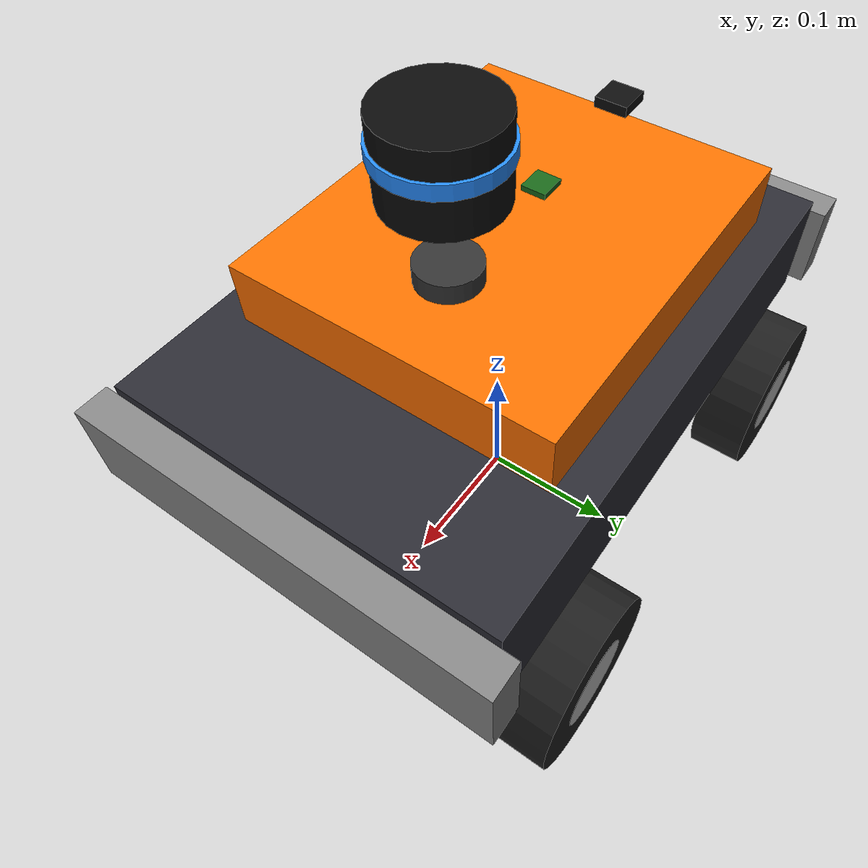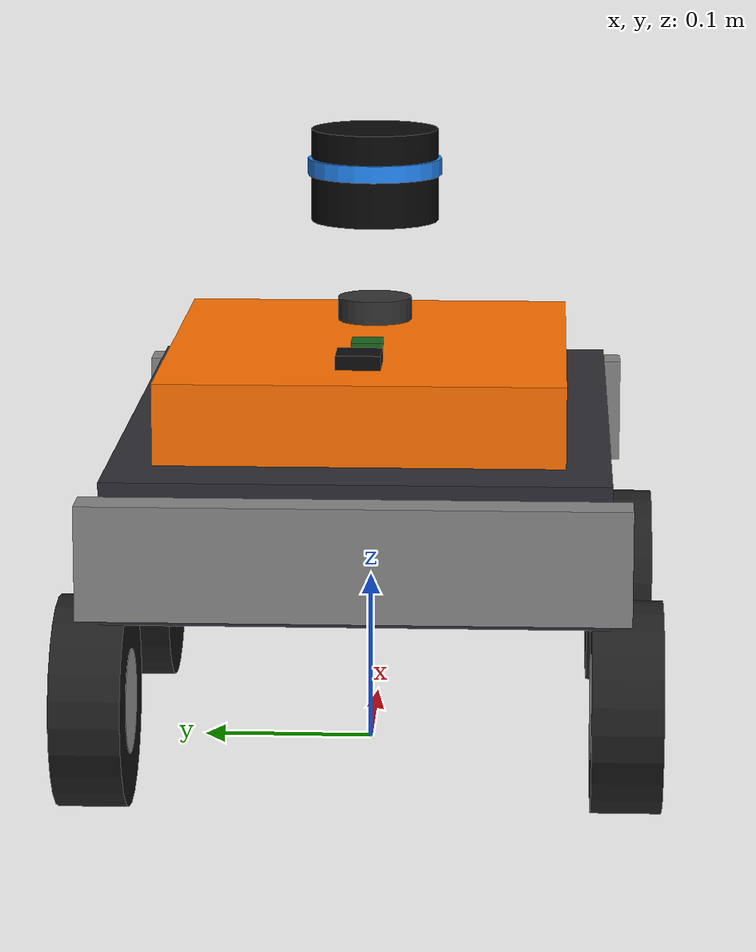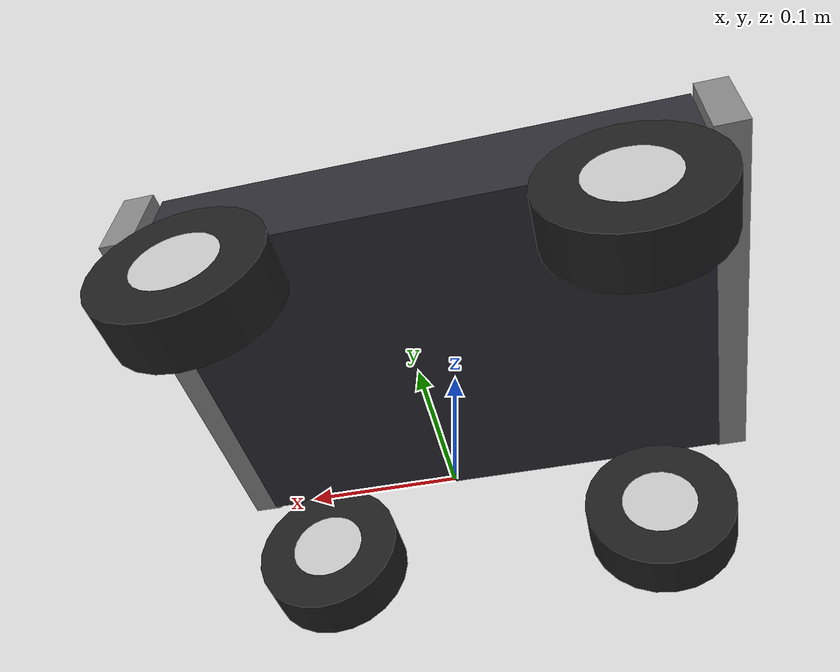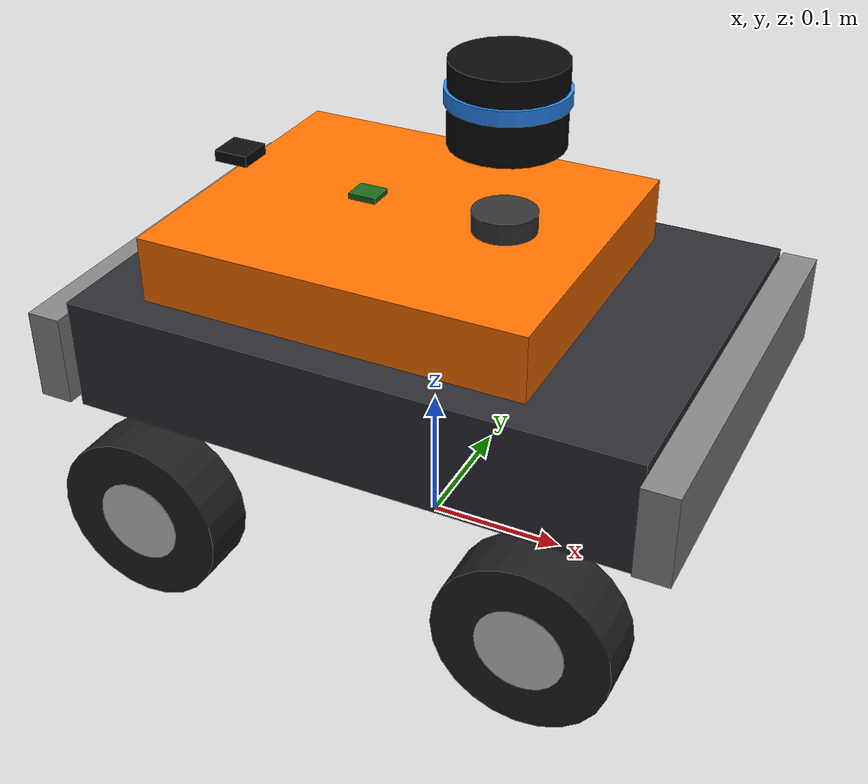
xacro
<?xml version="1.0"?>
<robot xmlns:xacro="http://www.ros.org/wiki/xacro" name="morphonav">

  <xacro:arg name="use_sim"    default="false"/>
  <xacro:arg name="drive_mode" default="rwd"/>
  <xacro:property name="use_sim"    value="$(arg use_sim)"/>
  <xacro:property name="drive_mode" value="$(arg drive_mode)"/>

  <!-- Robot dimensions -->
  <xacro:property name="chassis_l"    value="0.40"/>
  <xacro:property name="chassis_w"    value="0.28"/>
  <xacro:property name="chassis_h"    value="0.08"/>
  <xacro:property name="chassis_mass" value="4.0"/>

  <xacro:property name="wheel_r"    value="0.06"/>
  <xacro:property name="wheel_w"    value="0.04"/>
  <xacro:property name="wheel_mass" value="0.3"/>

  <xacro:property name="wheelbase"   value="0.28"/>
  <xacro:property name="track_width" value="0.30"/>

  <xacro:property name="chassis_z" value="${2*wheel_r + chassis_h/2}"/>

  <!-- Sensor mount macros -->
  <xacro:include filename="$(find morphonav_description)/urdf/imu.xacro"/>
  <xacro:include filename="$(find morphonav_description)/urdf/gps.xacro"/>

  <xacro:macro name="wheel_link" params="name">
    <link name="${name}">
      <visual>
        <geometry><cylinder radius="${wheel_r}" length="${wheel_w}"/></geometry>
        <origin xyz="0 0 0" rpy="${pi/2} 0 0"/>
        <material name="rubber"><color rgba="0.12 0.12 0.12 1.0"/></material>
      </visual>
      <visual>
        <geometry><cylinder radius="${wheel_r*0.50}" length="${wheel_w*0.35}"/></geometry>
        <origin xyz="0 ${wheel_w*0.33} 0" rpy="${pi/2} 0 0"/>
        <material name="hub_silver"><color rgba="0.78 0.78 0.78 1.0"/></material>
      </visual>
      <visual>
        <geometry><cylinder radius="${wheel_r*0.50}" length="${wheel_w*0.35}"/></geometry>
        <origin xyz="0 ${-wheel_w*0.33} 0" rpy="${pi/2} 0 0"/>
        <material name="hub_silver2"><color rgba="0.78 0.78 0.78 1.0"/></material>
      </visual>
      <collision>
        <geometry><cylinder radius="${wheel_r}" length="${wheel_w}"/></geometry>
        <origin xyz="0 0 0" rpy="${pi/2} 0 0"/>
      </collision>
      <inertial>
        <mass value="${wheel_mass}"/>
        <inertia
          ixx="${wheel_mass*(3*wheel_r*wheel_r + wheel_w*wheel_w)/12}"
          iyy="${wheel_mass*wheel_r*wheel_r/2}"
          izz="${wheel_mass*(3*wheel_r*wheel_r + wheel_w*wheel_w)/12}"
          ixy="0" ixz="0" iyz="0"/>
      </inertial>
    </link>
  </xacro:macro>

  <!-- Base frames -->
  <link name="base_footprint"/>

  <joint name="base_joint" type="fixed">
    <parent link="base_footprint"/>
    <child  link="base_link"/>
    <origin xyz="0 0 ${chassis_z}" rpy="0 0 0"/>
  </joint>

  <link name="base_link">
    <visual>
      <geometry><box size="${chassis_l} ${chassis_w} ${chassis_h}"/></geometry>
      <material name="chassis_body"><color rgba="0.17 0.17 0.20 1.0"/></material>
    </visual>
    <visual>
      <geometry><box size="${chassis_l*0.68} ${chassis_w*0.82} 0.046"/></geometry>
      <origin xyz="-0.02 0 ${chassis_h/2 + 0.023}" rpy="0 0 0"/>
      <material name="accent"><color rgba="1.0 0.44 0.0 1.0"/></material>
    </visual>
    <visual>
      <geometry><box size="0.024 ${chassis_w + 0.022} ${chassis_h*0.80}"/></geometry>
      <origin xyz="${chassis_l/2 + 0.012} 0 0" rpy="0 0 0"/>
      <material name="bumper"><color rgba="0.52 0.52 0.52 1.0"/></material>
    </visual>
    <visual>
      <geometry><box size="0.024 ${chassis_w + 0.022} ${chassis_h*0.80}"/></geometry>
      <origin xyz="${-chassis_l/2 - 0.012} 0 0" rpy="0 0 0"/>
      <material name="bumper2"><color rgba="0.52 0.52 0.52 1.0"/></material>
    </visual>
    <visual>
      <geometry><cylinder radius="0.022" length="0.06"/></geometry>
      <origin xyz="0.05 0 ${chassis_h/2 + 0.03}" rpy="0 0 0"/>
      <material name="pedestal"><color rgba="0.20 0.20 0.20 1.0"/></material>
    </visual>
    <collision>
      <geometry><box size="${chassis_l + 0.05} ${chassis_w + 0.022} ${chassis_h}"/></geometry>
    </collision>
    <inertial>
      <mass value="${chassis_mass}"/>
      <inertia
        ixx="${chassis_mass*(chassis_w*chassis_w + chassis_h*chassis_h)/12}"
        iyy="${chassis_mass*(chassis_l*chassis_l + chassis_h*chassis_h)/12}"
        izz="${chassis_mass*(chassis_l*chassis_l + chassis_w*chassis_w)/12}"
        ixy="0" ixz="0" iyz="0"/>
    </inertial>
  </link>

  <!-- All four wheels are continuous joints parented directly to base_link.
       Front wheels no longer steer (diff-drive). -->
  <joint name="front_left_wheel_joint" type="continuous">
    <parent link="base_link"/>
    <child  link="front_left_wheel"/>
    <origin xyz="${wheelbase/2} ${track_width/2} ${-chassis_h/2 - wheel_r}" rpy="0 0 0"/>
    <axis xyz="0 1 0"/>
  </joint>
  <xacro:wheel_link name="front_left_wheel"/>

  <joint name="front_right_wheel_joint" type="continuous">
    <parent link="base_link"/>
    <child  link="front_right_wheel"/>
    <origin xyz="${wheelbase/2} ${-track_width/2} ${-chassis_h/2 - wheel_r}" rpy="0 0 0"/>
    <axis xyz="0 1 0"/>
  </joint>
  <xacro:wheel_link name="front_right_wheel"/>

  <joint name="rear_left_wheel_joint" type="continuous">
    <parent link="base_link"/>
    <child  link="rear_left_wheel"/>
    <origin xyz="${-wheelbase/2} ${track_width/2} ${-chassis_h/2 - wheel_r}" rpy="0 0 0"/>
    <axis xyz="0 1 0"/>
  </joint>
  <xacro:wheel_link name="rear_left_wheel"/>

  <joint name="rear_right_wheel_joint" type="continuous">
    <parent link="base_link"/>
    <child  link="rear_right_wheel"/>
    <origin xyz="${-wheelbase/2} ${-track_width/2} ${-chassis_h/2 - wheel_r}" rpy="0 0 0"/>
    <axis xyz="0 1 0"/>
  </joint>
  <xacro:wheel_link name="rear_right_wheel"/>

  <!-- Lidar -->
  <joint name="laser_joint" type="fixed">
    <parent link="base_link"/>
    <child  link="laser_frame"/>
    <origin xyz="0.05 0 ${chassis_h/2 + 0.046 + 0.06 + 0.028}" rpy="0 0 0"/>
  </joint>

  <link name="laser_frame">
    <visual>
      <geometry><cylinder radius="0.038" length="0.055"/></geometry>
      <material name="lidar_body"><color rgba="0.04 0.04 0.04 1.0"/></material>
    </visual>
    <visual>
      <geometry><cylinder radius="0.040" length="0.010"/></geometry>
      <origin xyz="0 0 0.005" rpy="0 0 0"/>
      <material name="lidar_ring"><color rgba="0.15 0.55 1.0 1.0"/></material>
    </visual>
    <collision>
      <geometry><cylinder radius="0.038" length="0.055"/></geometry>
    </collision>
    <inertial>
      <mass value="0.15"/>
      <inertia ixx="0.0002" iyy="0.0002" izz="0.0002" ixy="0" ixz="0" iyz="0"/>
    </inertial>
  </link>

  <!-- IMU + GPS mounts -->
  <xacro:morphonav_imu parent="base_link" use_sim="${use_sim}"/>
  <xacro:morphonav_gps parent="base_link" use_sim="${use_sim}"/>

  <!-- ═══════════════════════════════════════════════
       GAZEBO — only emitted when use_sim:=true
       ═══════════════════════════════════════════════ -->
  <xacro:if value="${use_sim}">

    <xacro:macro name="wheel_contact" params="name">
      <gazebo reference="${name}">
        <material>Gazebo/FlatBlack</material>
        <mu1>1.0</mu1>
        <mu2>0.05</mu2>
        <kp>10000000.0</kp>
        <kd>1.0</kd>
        <minDepth>0.001</minDepth>
        <maxVel>0.5</maxVel>
        <fdir1>1 0 0</fdir1>
      </gazebo>
    </xacro:macro>
    <xacro:wheel_contact name="rear_left_wheel"/>
    <xacro:wheel_contact name="rear_right_wheel"/>
    <xacro:wheel_contact name="front_left_wheel"/>
    <xacro:wheel_contact name="front_right_wheel"/>
    <gazebo reference="base_link">
      <material>Gazebo/DarkGrey</material>
    </gazebo>

    <!-- Lidar -->
    <gazebo reference="laser_frame">
      <sensor type="ray" name="rplidar_sim">
        <pose>0 0 0 0 0 0</pose>
        <visualize>false</visualize>
        <update_rate>10</update_rate>
        <ray>
          <scan>
            <horizontal>
              <samples>360</samples>
              <resolution>1</resolution>
              <min_angle>-3.14159</min_angle>
              <max_angle>3.14159</max_angle>
            </horizontal>
          </scan>
          <range>
            <min>0.20</min>
            <max>12.0</max>
            <resolution>0.01</resolution>
          </range>
          <noise>
            <type>gaussian</type>
            <mean>0.0</mean>
            <stddev>0.01</stddev>
          </noise>
        </ray>
        <plugin name="gazebo_ros_lidar" filename="libgazebo_ros_ray_sensor.so">
          <ros>
            <remapping>~/out:=/scan</remapping>
          </ros>
          <output_type>sensor_msgs/LaserScan</output_type>
          <frame_name>laser_frame</frame_name>
        </plugin>
      </sensor>
    </gazebo>

    <xacro:if value="${drive_mode == 'rwd'}">
      <gazebo>
        <plugin name="diff_drive" filename="libgazebo_ros_diff_drive.so">
          <update_rate>50.0</update_rate>
          <num_wheel_pairs>1</num_wheel_pairs>
          <left_joint>rear_left_wheel_joint</left_joint>
          <right_joint>rear_right_wheel_joint</right_joint>
          <wheel_separation>${track_width}</wheel_separation>
          <wheel_diameter>${wheel_r*2}</wheel_diameter>
          <max_wheel_torque>5.0</max_wheel_torque>
          <max_wheel_acceleration>2.0</max_wheel_acceleration>
          <command_topic>cmd_vel</command_topic>
          <odometry_topic>odom</odometry_topic>
          <odometry_frame>odom</odometry_frame>
          <robot_base_frame>base_footprint</robot_base_frame>
          <publish_odom>true</publish_odom>
          <publish_odom_tf>true</publish_odom_tf>
          <publish_wheel_tf>false</publish_wheel_tf>
          <odometry_source>1</odometry_source>
        </plugin>
      </gazebo>
    </xacro:if>

    <xacro:if value="${drive_mode == 'awd'}">
      <gazebo>
        <plugin name="diff_drive" filename="libgazebo_ros_diff_drive.so">
          <update_rate>50.0</update_rate>
          <num_wheel_pairs>2</num_wheel_pairs>
          <left_joint>rear_left_wheel_joint</left_joint>
          <left_joint>front_left_wheel_joint</left_joint>
          <right_joint>rear_right_wheel_joint</right_joint>
          <right_joint>front_right_wheel_joint</right_joint>
          <wheel_separation>${track_width}</wheel_separation>
          <wheel_separation>${track_width}</wheel_separation>
          <wheel_diameter>${wheel_r*2}</wheel_diameter>
          <wheel_diameter>${wheel_r*2}</wheel_diameter>
          <max_wheel_torque>5.0</max_wheel_torque>
          <max_wheel_acceleration>2.0</max_wheel_acceleration>
          <command_topic>cmd_vel</command_topic>
          <odometry_topic>odom</odometry_topic>
          <odometry_frame>odom</odometry_frame>
          <robot_base_frame>base_footprint</robot_base_frame>
          <publish_odom>true</publish_odom>
          <publish_odom_tf>true</publish_odom_tf>
          <publish_wheel_tf>false</publish_wheel_tf>
          <odometry_source>1</odometry_source>
        </plugin>
      </gazebo>
    </xacro:if>

    <!-- Joint state publisher so RViz/RSP gets all four wheel joints -->
    <gazebo>
      <plugin name="joint_state_publisher"
              filename="libgazebo_ros_joint_state_publisher.so">
        <update_rate>30</update_rate>
        <joint_name>rear_left_wheel_joint</joint_name>
        <joint_name>rear_right_wheel_joint</joint_name>
        <joint_name>front_left_wheel_joint</joint_name>
        <joint_name>front_right_wheel_joint</joint_name>
      </plugin>
    </gazebo>

  </xacro:if>

</robot>

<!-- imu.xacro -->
<robot xmlns:xacro="http://www.ros.org/wiki/xacro">

  <xacro:macro name="morphonav_imu" params="parent use_sim:=false">
    <joint name="imu_joint" type="fixed">
      <parent link="${parent}"/>
      <child  link="imu_link"/>
      <origin xyz="-0.05 0 ${chassis_h/2 + 0.05}" rpy="0 0 0"/>
    </joint>

    <link name="imu_link">
      <visual>
        <geometry><box size="0.020 0.018 0.004"/></geometry>
        <material name="imu_pcb"><color rgba="0.10 0.40 0.10 1.0"/></material>
      </visual>
      <inertial>
        <mass value="0.005"/>
        <inertia ixx="1e-7" iyy="1e-7" izz="1e-7" ixy="0" ixz="0" iyz="0"/>
      </inertial>
    </link>

    <xacro:if value="${use_sim}">
      <gazebo reference="imu_link">
        <sensor name="imu_sensor" type="imu">
          <always_on>true</always_on>
          <update_rate>100</update_rate>
          <imu>
            <angular_velocity>
              <x><noise type="gaussian"><mean>0</mean><stddev>0.0003</stddev></noise></x>
              <y><noise type="gaussian"><mean>0</mean><stddev>0.0003</stddev></noise></y>
              <z><noise type="gaussian"><mean>0</mean><stddev>0.0003</stddev></noise></z>
            </angular_velocity>
            <linear_acceleration>
              <x><noise type="gaussian"><mean>0</mean><stddev>0.017</stddev></noise></x>
              <y><noise type="gaussian"><mean>0</mean><stddev>0.017</stddev></noise></y>
              <z><noise type="gaussian"><mean>0</mean><stddev>0.017</stddev></noise></z>
            </linear_acceleration>
          </imu>
          <plugin name="imu_plugin" filename="libgazebo_ros_imu_sensor.so">
            <ros>
              <remapping>~/out:=/imu/data_raw</remapping>
            </ros>
            <frame_name>imu_link</frame_name>
            <initial_orientation_as_reference>false</initial_orientation_as_reference>
          </plugin>
        </sensor>
      </gazebo>
    </xacro:if>
  </xacro:macro>

</robot>

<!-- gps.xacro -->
<robot xmlns:xacro="http://www.ros.org/wiki/xacro">

  <!-- GPS link (u-blox NEO-7M antenna). Mounted at the rear of the chassis,
       elevated for sky view. NavSatFix is published in this frame. -->
  <xacro:macro name="morphonav_gps" params="parent use_sim:=false">
    <joint name="gps_joint" type="fixed">
      <parent link="${parent}"/>
      <child  link="gps_link"/>
      <origin xyz="-0.15 0 ${chassis_h/2 + 0.06}" rpy="0 0 0"/>
    </joint>

    <link name="gps_link">
      <visual>
        <geometry><box size="0.025 0.025 0.008"/></geometry>
        <material name="gps_module"><color rgba="0.05 0.05 0.05 1.0"/></material>
      </visual>
      <inertial>
        <mass value="0.010"/>
        <inertia ixx="1e-7" iyy="1e-7" izz="1e-7" ixy="0" ixz="0" iyz="0"/>
      </inertial>
    </link>

    <xacro:if value="${use_sim}">
      <gazebo reference="gps_link">
        <sensor name="gps_sensor" type="gps">
          <always_on>true</always_on>
          <update_rate>5</update_rate>
          <plugin name="gps_plugin" filename="libgazebo_ros_gps_sensor.so">
            <ros>
              <remapping>~/out:=/gps/fix</remapping>
            </ros>
            <frame_name>gps_link</frame_name>
          </plugin>
          <gps>
            <position_sensing>
              <horizontal>
                <noise type="gaussian"><mean>0</mean><stddev>1.5</stddev></noise>
              </horizontal>
              <vertical>
                <noise type="gaussian"><mean>0</mean><stddev>3.0</stddev></noise>
              </vertical>
            </position_sensing>
          </gps>
        </sensor>
      </gazebo>
    </xacro:if>
  </xacro:macro>

</robot>
